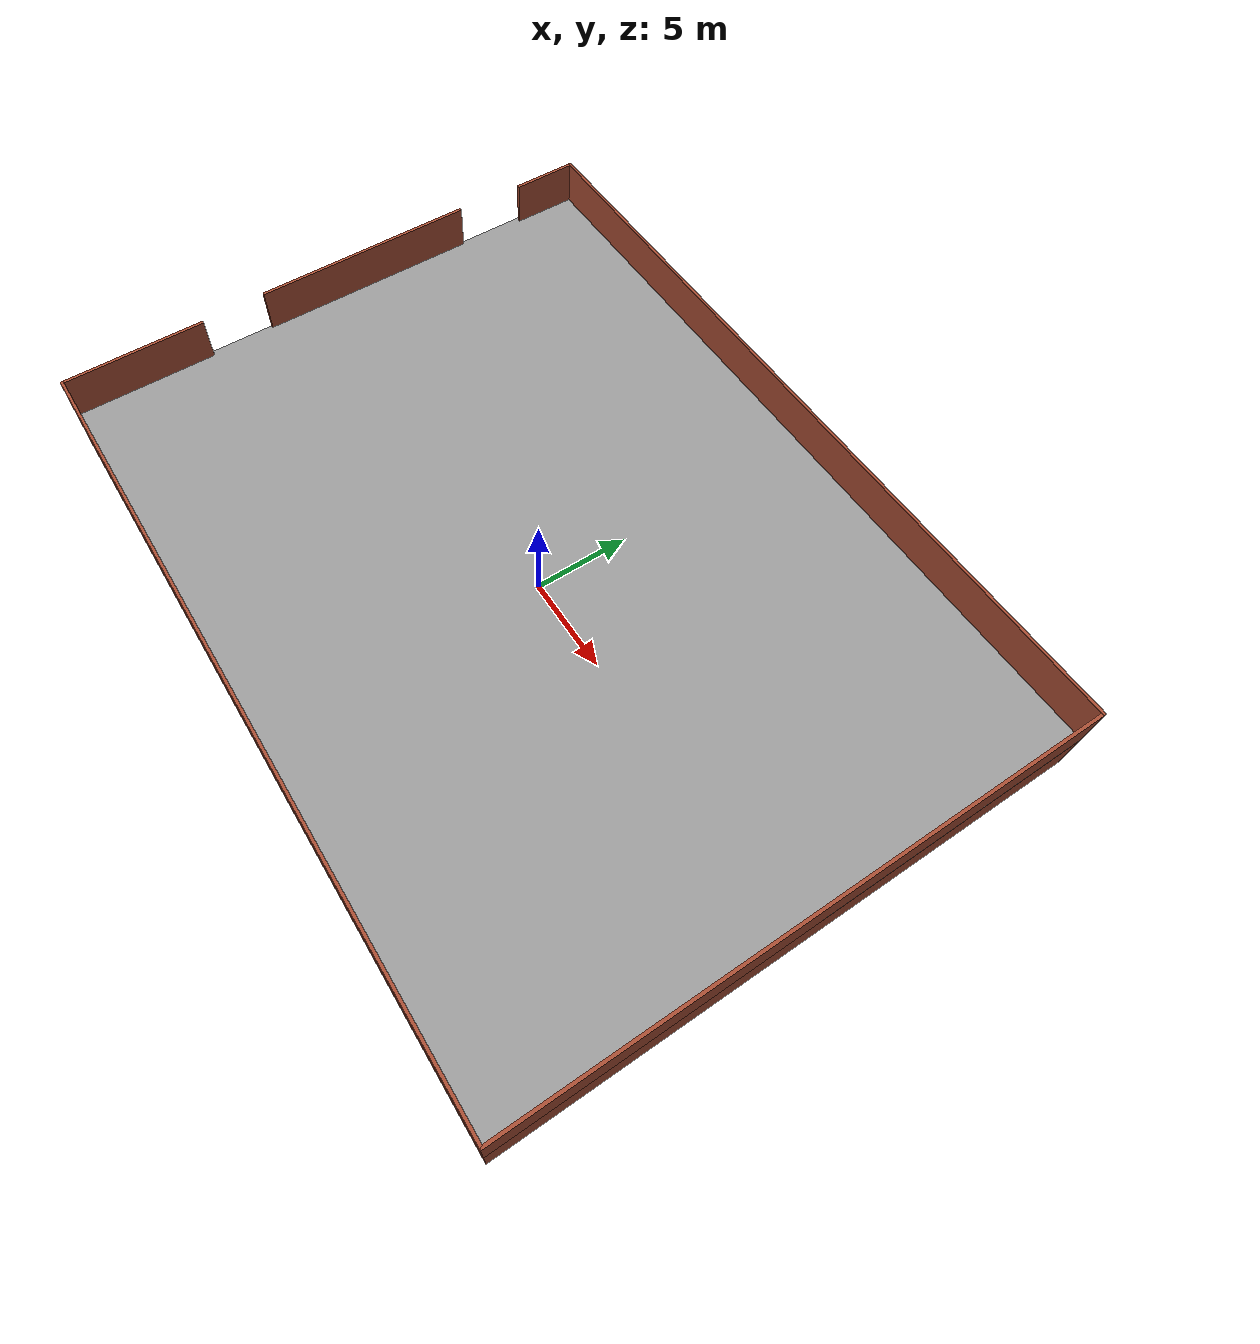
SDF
<sdf version="1.6">
 <world name="default">
  <light name="sun" type="directional">
   <pose>0 0 10 0 -0 0</pose>
   <diffuse>0.8 0.8 0.8 1</diffuse>
   <specular>0.1 0.1 0.1 1</specular>
   <attenuation>
    <range>1000</range>
    <constant>0.9</constant>
    <linear>0.01</linear>
    <quadratic>0.001</quadratic>
   </attenuation>
   <direction>-0.5 0.5 -1</direction>
  </light>
  <model name="cmu_ground_plane">
   <static>1</static>
   <link name="link">
    <collision name="collision">
     <geometry><plane><normal>0 0 1</normal><size>39.44 29.55</size></plane></geometry>
     <surface><friction><ode><mu>100</mu><mu2>50</mu2></ode></friction></surface>
    </collision>
    <visual name="visual">
     <cast_shadows>0</cast_shadows>
     <geometry><plane><normal>0 0 1</normal><size>39.44 29.55</size></plane></geometry>
     <material>
      <script>
       <uri>model://cmu_ground_plane/materials/scripts</uri>
       <uri>model://cmu_ground_plane/materials/textures</uri>
       <name>CMUGroundPlane/Image</name>
      </script>
     </material>
    </visual>
   </link>
  </model>
  <gravity>0 0 -9.8</gravity>
  <magnetic_field>6e-06 2.3e-05 -4.2e-05</magnetic_field>
  <atmosphere type="adiabatic"/>
  <physics name="default_physics" default="0" type="ode">
   <max_step_size>0.001</max_step_size>
   <real_time_factor>1</real_time_factor>
   <real_time_update_rate>1000</real_time_update_rate>
  </physics>
  <scene><ambient>0.4 0.4 0.4 1</ambient><background>0.7 0.7 0.7 1</background><shadows>1</shadows></scene>
  <spherical_coordinates>
   <surface_model>EARTH_WGS84</surface_model>
   <latitude_deg>0</latitude_deg>
   <longitude_deg>0</longitude_deg>
   <elevation>0</elevation>
   <heading_deg>0</heading_deg>
  </spherical_coordinates>
  <model name="wallAndRoof_2">
   <pose>0.03929 -0.18807 0 0 -0 0</pose>
   <link name="Floor_2">
    <collision name="Floor_2_Collision">
     <geometry><box><size>39.8884 29.75 0.1</size></box></geometry>
     <pose>0 0 0.05 0 -0 0</pose>
    </collision>
    <visual name="Floor_2_Visual">
     <pose>0 0 0.05 0 -0 0</pose>
     <geometry><box><size>39.8884 29.75 0.1</size></box></geometry>
     <material>
      <script><uri>file://media/materials/scripts/gazebo.material</uri><name>Gazebo/Grey</name></script>
      <ambient>0.32549 0.32549 0.32549 1</ambient>
     </material>
    </visual>
    <pose>-1e-06 0 2.5 0 -0 0</pose>
   </link>
   <link name="Wall_11">
    <collision name="Wall_11_Collision">
     <geometry><box><size>7.5 0.15 2.5</size></box></geometry>
     <pose>0 0 1.25 0 -0 0</pose>
    </collision>
    <visual name="Wall_11_Visual">
     <pose>0 0 1.25 0 -0 0</pose>
     <geometry><box><size>7.5 0.15 2.5</size></box></geometry>
     <material>
      <script><uri>file://media/materials/scripts/gazebo.material</uri><name>Gazebo/Bricks</name></script>
      <ambient>1 1 1 1</ambient>
     </material>
    </visual>
    <pose>-19.7308 -11.125 0 0 0 -1.5708</pose>
   </link>
   <link name="Wall_12">
    <collision name="Wall_12_Collision">
     <geometry><box><size>39.75 0.15 2.5</size></box></geometry>
     <pose>0 0 1.25 0 -0 0</pose>
    </collision>
    <visual name="Wall_12_Visual">
     <pose>0 0 1.25 0 -0 0</pose>
     <geometry><box><size>39.75 0.15 2.5</size></box></geometry>
     <material>
      <script><uri>file://media/materials/scripts/gazebo.material</uri><name>Gazebo/Bricks</name></script>
      <ambient>1 1 1 1</ambient>
     </material>
    </visual>
    <pose>0.069223 -14.8 0 0 -0 0</pose>
   </link>
   <link name="Wall_13">
    <collision name="Wall_13_Collision">
     <geometry><box><size>29.75 0.15 2.5</size></box></geometry>
     <pose>0 0 1.25 0 -0 0</pose>
    </collision>
    <visual name="Wall_13_Visual">
     <pose>0 0 1.25 0 -0 0</pose>
     <geometry><box><size>29.75 0.15 2.5</size></box></geometry>
     <material>
      <script><uri>file://media/materials/scripts/gazebo.material</uri><name>Gazebo/Bricks</name></script>
      <ambient>1 1 1 1</ambient>
     </material>
    </visual>
    <pose>19.8692 0 0 0 -0 1.5708</pose>
   </link>
   <link name="Wall_14">
    <collision name="Wall_14_Collision">
     <geometry><box><size>39.75 0.15 2.5</size></box></geometry>
     <pose>0 0 1.25 0 -0 0</pose>
    </collision>
    <visual name="Wall_14_Visual">
     <pose>0 0 1.25 0 -0 0</pose>
     <geometry><box><size>39.75 0.15 2.5</size></box></geometry>
     <material>
      <script><uri>file://media/materials/scripts/gazebo.material</uri><name>Gazebo/Bricks</name></script>
      <ambient>1 1 1 1</ambient>
     </material>
    </visual>
    <pose>0.069223 14.8 0 0 -0 3.14159</pose>
   </link>
   <link name="Wall_15">
    <collision name="Wall_15_Collision">
     <geometry><box><size>3.5 0.15 2.5</size></box></geometry>
     <pose>0 0 1.25 0 -0 0</pose>
    </collision>
    <visual name="Wall_15_Visual">
     <pose>0 0 1.25 0 -0 0</pose>
     <geometry><box><size>3.5 0.15 2.5</size></box></geometry>
     <material>
      <script><uri>file://media/materials/scripts/gazebo.material</uri><name>Gazebo/Bricks</name></script>
      <ambient>1 1 1 1</ambient>
     </material>
    </visual>
    <pose>-19.7308 13.125 0 0 0 -1.5708</pose>
   </link>
   <link name="Wall_17">
    <collision name="Wall_17_Collision">
     <geometry><box><size>11.75 0.15 2.5</size></box></geometry>
     <pose>0 0 1.25 0 -0 0</pose>
    </collision>
    <visual name="Wall_17_Visual">
     <pose>0 0 1.25 0 -0 0</pose>
     <geometry><box><size>11.75 0.15 2.5</size></box></geometry>
     <material>
      <script><uri>file://media/materials/scripts/gazebo.material</uri><name>Gazebo/Bricks</name></script>
      <ambient>1 1 1 1</ambient>
     </material>
    </visual>
    <pose>-19.8692 1.90922 0 0 0 -1.5708</pose>
   </link>
   <link name="Wall_31">
    <collision name="Wall_31_Collision">
     <geometry><box><size>7.5 0.15 2.5</size></box></geometry>
     <pose>0 0 1.25 0 -0 0</pose>
    </collision>
    <visual name="Wall_31_Visual">
     <pose>0 0 1.25 0 -0 0</pose>
     <geometry><box><size>7.5 0.15 2.5</size></box></geometry>
     <material>
      <script><uri>file://media/materials/scripts/gazebo.material</uri><name>Gazebo/Bricks</name></script>
      <ambient>1 1 1 1</ambient>
     </material>
    </visual>
    <pose>-19.7308 -11.125 2.5 0 0 -1.5708</pose>
   </link>
   <link name="Wall_32">
    <collision name="Wall_32_Collision">
     <geometry><box><size>39.75 0.15 2.5</size></box></geometry>
     <pose>0 0 1.25 0 -0 0</pose>
    </collision>
    <visual name="Wall_32_Visual">
     <pose>0 0 1.25 0 -0 0</pose>
     <geometry><box><size>39.75 0.15 2.5</size></box></geometry>
     <material>
      <script><uri>file://media/materials/scripts/gazebo.material</uri><name>Gazebo/Bricks</name></script>
      <ambient>1 1 1 1</ambient>
     </material>
    </visual>
    <pose>0.069223 -14.8 2.5 0 -0 0</pose>
   </link>
   <link name="Wall_33">
    <collision name="Wall_33_Collision">
     <geometry><box><size>29.75 0.15 2.5</size></box></geometry>
     <pose>0 0 1.25 0 -0 0</pose>
    </collision>
    <visual name="Wall_33_Visual">
     <pose>0 0 1.25 0 -0 0</pose>
     <geometry><box><size>29.75 0.15 2.5</size></box></geometry>
     <material>
      <script><uri>file://media/materials/scripts/gazebo.material</uri><name>Gazebo/Bricks</name></script>
      <ambient>1 1 1 1</ambient>
     </material>
    </visual>
    <pose>19.8692 0 2.5 0 -0 1.5708</pose>
   </link>
   <link name="Wall_34">
    <collision name="Wall_34_Collision">
     <geometry><box><size>39.75 0.15 2.5</size></box></geometry>
     <pose>0 0 1.25 0 -0 0</pose>
    </collision>
    <visual name="Wall_34_Visual">
     <pose>0 0 1.25 0 -0 0</pose>
     <geometry><box><size>39.75 0.15 2.5</size></box></geometry>
     <material>
      <script><uri>file://media/materials/scripts/gazebo.material</uri><name>Gazebo/Bricks</name></script>
      <ambient>1 1 1 1</ambient>
     </material>
    </visual>
    <pose>0.069223 14.8 2.5 0 -0 3.14159</pose>
   </link>
   <link name="Wall_35">
    <collision name="Wall_35_Collision">
     <geometry><box><size>3.5 0.15 2.5</size></box></geometry>
     <pose>0 0 1.25 0 -0 0</pose>
    </collision>
    <visual name="Wall_35_Visual">
     <pose>0 0 1.25 0 -0 0</pose>
     <geometry><box><size>3.5 0.15 2.5</size></box></geometry>
     <material>
      <script><uri>file://media/materials/scripts/gazebo.material</uri><name>Gazebo/Bricks</name></script>
      <ambient>1 1 1 1</ambient>
     </material>
    </visual>
    <pose>-19.7308 13.125 2.5 0 0 -1.5708</pose>
   </link>
   <link name="Wall_36">
    <collision name="Wall_36_Collision">
     <geometry><box><size>11.75 0.15 2.5</size></box></geometry>
     <pose>0 0 1.25 0 -0 0</pose>
    </collision>
    <visual name="Wall_36_Visual">
     <pose>0 0 1.25 0 -0 0</pose>
     <geometry><box><size>11.75 0.15 2.5</size></box></geometry>
     <material>
      <script><uri>file://media/materials/scripts/gazebo.material</uri><name>Gazebo/Bricks</name></script>
      <ambient>1 1 1 1</ambient>
     </material>
    </visual>
    <pose>-19.8692 1.90922 2.5 0 0 -1.5708</pose>
   </link>
   <static>1</static>
  </model>
 </world>
</sdf>
